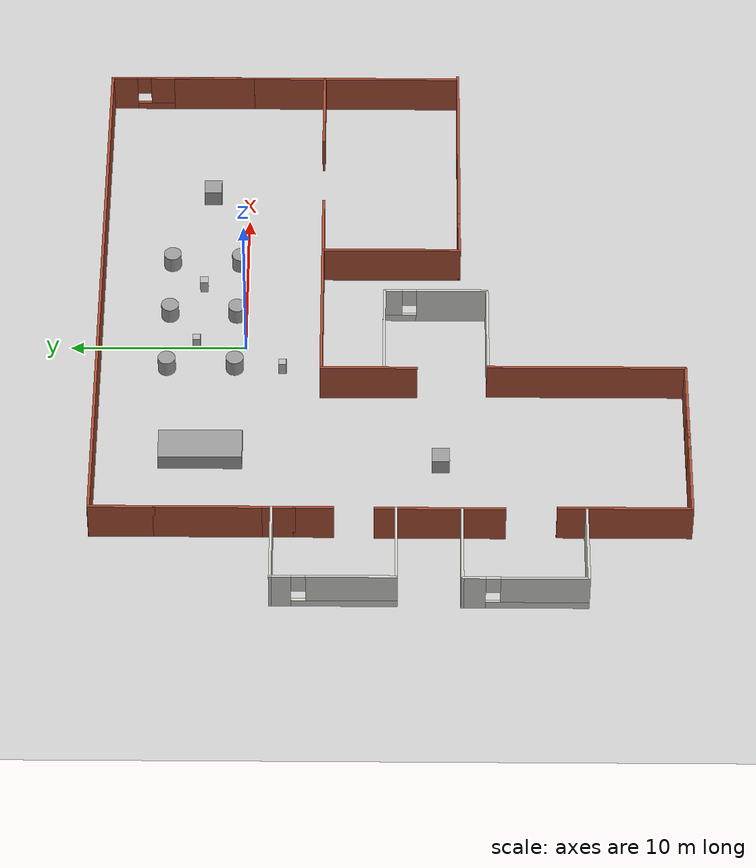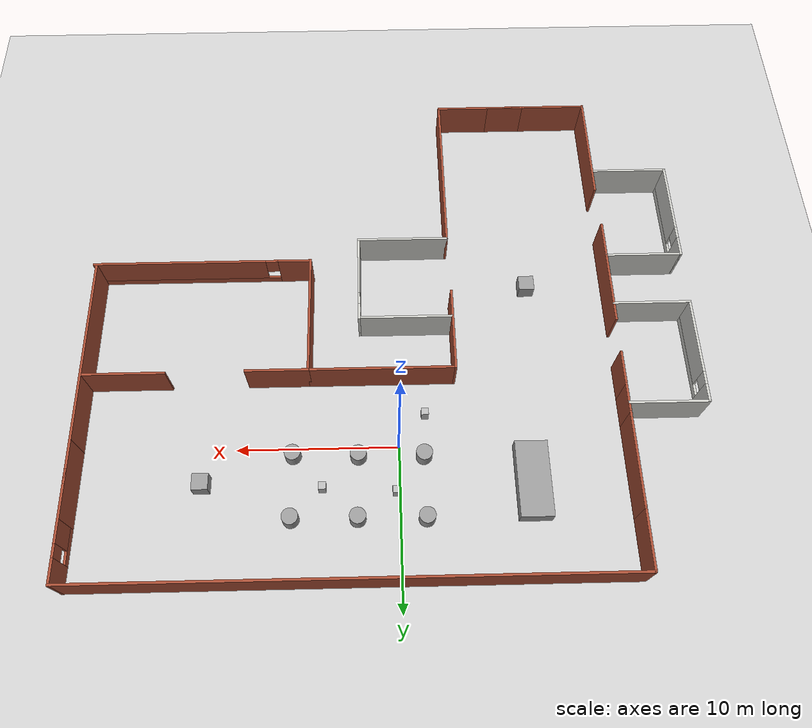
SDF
<sdf version="1.7">
 <world name="default">
  <plugin name="gazebo_ros_state" filename="libgazebo_ros_state.so"/>
  <light name="sun" type="directional">
   <pose>0 0 10 0 -0 0</pose>
   <diffuse>0.8 0.8 0.8 1</diffuse>
   <specular>0.2 0.2 0.2 1</specular>
   <attenuation>
    <range>1000</range>
    <constant>0.9</constant>
    <linear>0.01</linear>
    <quadratic>0.001</quadratic>
   </attenuation>
   <direction>-0.5 0.1 -0.9</direction>
   <spot><inner_angle>0</inner_angle><outer_angle>0</outer_angle><falloff>0</falloff></spot>
  </light>
  <model name="ground_plane">
   <static>1</static>
   <link name="link">
    <collision name="collision">
     <geometry><plane><normal>0 0 1</normal><size>100 100</size></plane></geometry>
     <surface>
      <contact><collide_bitmask>65535</collide_bitmask></contact>
      <friction><ode><mu>100</mu><mu2>50</mu2></ode></friction>
     </surface>
    </collision>
    <visual name="visual">
     <cast_shadows>0</cast_shadows>
     <geometry><plane><normal>0 0 1</normal><size>100 100</size></plane></geometry>
     <material>
      <script><uri>file://media/materials/scripts/gazebo.material</uri><name>Gazebo/Grey</name></script>
     </material>
    </visual>
   </link>
  </model>
  <gravity>0 0 -9.8</gravity>
  <magnetic_field>6e-06 2.3e-05 -4.2e-05</magnetic_field>
  <atmosphere type="adiabatic"/>
  <physics type="ode">
   <max_step_size>0.001</max_step_size>
   <real_time_factor>1</real_time_factor>
   <real_time_update_rate>1000</real_time_update_rate>
  </physics>
  <scene><ambient>0.4 0.4 0.4 1</ambient><background>0.7 0.7 0.7 1</background><shadows>1</shadows></scene>
  <audio><device>default</device></audio>
  <spherical_coordinates>
   <surface_model>EARTH_WGS84</surface_model>
   <latitude_deg>0</latitude_deg>
   <longitude_deg>0</longitude_deg>
   <elevation>0</elevation>
   <heading_deg>0</heading_deg>
  </spherical_coordinates>
  <model name="house">
   <pose>0.37485 -8.23016 0 0 -0 0</pose>
   <link name="Wall_11">
    <collision name="Wall_11_Collision">
     <geometry><box><size>5 0.15 2.5</size></box></geometry>
     <pose>0 0 1.25 0 -0 0</pose>
    </collision>
    <visual name="Wall_11_Visual">
     <pose>0 0 1.25 0 -0 0</pose>
     <geometry><box><size>5 0.15 2.5</size></box></geometry>
     <material>
      <script><uri>file://media/materials/scripts/gazebo.material</uri><name>Gazebo/CeilingTiled</name></script>
      <ambient>0.921569 0.807843 0.615686 1</ambient>
     </material>
     <meta><layer>0</layer></meta>
    </visual>
    <pose>-16.7413 6.52362 0 0 -0 3.14159</pose>
   </link>
   <link name="Wall_12">
    <pose>-19.1663 3.09862 0 0 -0 -1.5708</pose>
    <visual name="Wall_12_Visual_0">
     <pose>-2.89413 0 1.25 0 -0 0</pose>
     <geometry><box><size>1.21173 0.15 2.5</size></box></geometry>
     <material>
      <script><uri>file://media/materials/scripts/gazebo.material</uri><name>Gazebo/CeilingTiled</name></script>
      <ambient>0.921569 0.807843 0.615686 1</ambient>
     </material>
     <meta><layer>0</layer></meta>
    </visual>
    <collision name="Wall_12_Collision_0">
     <geometry><box><size>1.21173 0.15 2.5</size></box></geometry>
     <pose>-2.89413 0 1.25 0 -0 0</pose>
    </collision>
    <visual name="Wall_12_Visual_1">
     <pose>0.605867 0 0.25 0 -0 0</pose>
     <geometry><box><size>5.78827 0.15 0.5</size></box></geometry>
     <material>
      <script><uri>file://media/materials/scripts/gazebo.material</uri><name>Gazebo/CeilingTiled</name></script>
      <ambient>0.921569 0.807843 0.615686 1</ambient>
     </material>
     <meta><layer>0</layer></meta>
    </visual>
    <collision name="Wall_12_Collision_1">
     <geometry><box><size>5.78827 0.15 0.5</size></box></geometry>
     <pose>0.605867 0 0.25 0 -0 0</pose>
    </collision>
    <visual name="Wall_12_Visual_2">
     <pose>1.00587 0 1.5 0 -0 0</pose>
     <geometry><box><size>4.98827 0.15 2</size></box></geometry>
     <material>
      <script><uri>file://media/materials/scripts/gazebo.material</uri><name>Gazebo/CeilingTiled</name></script>
      <ambient>0.921569 0.807843 0.615686 1</ambient>
     </material>
     <meta><layer>0</layer></meta>
    </visual>
    <collision name="Wall_12_Collision_2">
     <geometry><box><size>4.98827 0.15 2</size></box></geometry>
     <pose>1.00587 0 1.5 0 -0 0</pose>
    </collision>
    <visual name="Wall_12_Visual_3">
     <pose>-1.88827 0 1.9 0 -0 0</pose>
     <geometry><box><size>0.8 0.15 1.2</size></box></geometry>
     <material>
      <script><uri>file://media/materials/scripts/gazebo.material</uri><name>Gazebo/CeilingTiled</name></script>
      <ambient>0.921569 0.807843 0.615686 1</ambient>
     </material>
     <meta><layer>0</layer></meta>
    </visual>
    <collision name="Wall_12_Collision_3">
     <geometry><box><size>0.8 0.15 1.2</size></box></geometry>
     <pose>-1.88827 0 1.9 0 -0 0</pose>
    </collision>
   </link>
   <link name="Wall_13">
    <collision name="Wall_13_Collision">
     <geometry><box><size>5 0.15 2.5</size></box></geometry>
     <pose>0 0 1.25 0 -0 0</pose>
    </collision>
    <visual name="Wall_13_Visual">
     <pose>0 0 1.25 0 -0 0</pose>
     <geometry><box><size>5 0.15 2.5</size></box></geometry>
     <material>
      <script><uri>file://media/materials/scripts/gazebo.material</uri><name>Gazebo/CeilingTiled</name></script>
      <ambient>0.921569 0.807843 0.615686 1</ambient>
     </material>
     <meta><layer>0</layer></meta>
    </visual>
    <pose>-16.7413 -0.326379 0 0 -0 0</pose>
   </link>
   <link name="Wall_15">
    <collision name="Wall_15_Collision">
     <geometry><box><size>2.25 0.15 2.5</size></box></geometry>
     <pose>0 0 1.25 0 -0 0</pose>
    </collision>
    <visual name="Wall_15_Visual">
     <pose>0 0 1.25 0 -0 0</pose>
     <geometry><box><size>2.25 0.15 2.5</size></box></geometry>
     <material>
      <script><uri>file://media/materials/scripts/gazebo.material</uri><name>Gazebo/Bricks</name></script>
      <ambient>1 1 1 1</ambient>
     </material>
     <meta><layer>0</layer></meta>
    </visual>
    <pose>-14.2878 4.2199 0 0 -0 -1.5708</pose>
   </link>
   <link name="Wall_17">
    <collision name="Wall_17_Collision">
     <geometry><box><size>7.25 0.15 2.5</size></box></geometry>
     <pose>0 0 1.25 0 -0 0</pose>
    </collision>
    <visual name="Wall_17_Visual">
     <pose>0 0 1.25 0 -0 0</pose>
     <geometry><box><size>7.25 0.15 2.5</size></box></geometry>
     <material>
      <script><uri>file://media/materials/scripts/gazebo.material</uri><name>Gazebo/Bricks</name></script>
      <ambient>1 1 1 1</ambient>
     </material>
     <meta><layer>0</layer></meta>
    </visual>
    <pose>-14.3152 -2.72703 0 0 -0 -1.5708</pose>
   </link>
   <link name="Wall_19">
    <collision name="Wall_19_Collision">
     <geometry><box><size>5 0.15 2.5</size></box></geometry>
     <pose>0 0 1.25 0 -0 0</pose>
    </collision>
    <visual name="Wall_19_Visual">
     <pose>0 0 1.25 0 -0 0</pose>
     <geometry><box><size>5 0.15 2.5</size></box></geometry>
     <material>
      <script><uri>file://media/materials/scripts/gazebo.material</uri><name>Gazebo/CeilingTiled</name></script>
      <ambient>0.921569 0.807843 0.615686 1</ambient>
     </material>
     <meta><layer>0</layer></meta>
    </visual>
    <pose>-16.7931 -3.92962 0 0 -0 3.14159</pose>
   </link>
   <link name="Wall_21">
    <pose>-19.2181 -7.35462 0 0 -0 -1.5708</pose>
    <visual name="Wall_21_Visual_0">
     <pose>-2.82936 0 1.25 0 -0 0</pose>
     <geometry><box><size>1.34129 0.15 2.5</size></box></geometry>
     <material>
      <script><uri>file://media/materials/scripts/gazebo.material</uri><name>Gazebo/CeilingTiled</name></script>
      <ambient>0.921569 0.807843 0.615686 1</ambient>
     </material>
     <meta><layer>0</layer></meta>
    </visual>
    <collision name="Wall_21_Collision_0">
     <geometry><box><size>1.34129 0.15 2.5</size></box></geometry>
     <pose>-2.82936 0 1.25 0 -0 0</pose>
    </collision>
    <visual name="Wall_21_Visual_1">
     <pose>0.670644 0 0.25 0 -0 0</pose>
     <geometry><box><size>5.65871 0.15 0.5</size></box></geometry>
     <material>
      <script><uri>file://media/materials/scripts/gazebo.material</uri><name>Gazebo/CeilingTiled</name></script>
      <ambient>0.921569 0.807843 0.615686 1</ambient>
     </material>
     <meta><layer>0</layer></meta>
    </visual>
    <collision name="Wall_21_Collision_1">
     <geometry><box><size>5.65871 0.15 0.5</size></box></geometry>
     <pose>0.670644 0 0.25 0 -0 0</pose>
    </collision>
    <visual name="Wall_21_Visual_2">
     <pose>1.07064 0 1.5 0 -0 0</pose>
     <geometry><box><size>4.85871 0.15 2</size></box></geometry>
     <material>
      <script><uri>file://media/materials/scripts/gazebo.material</uri><name>Gazebo/CeilingTiled</name></script>
      <ambient>0.921569 0.807843 0.615686 1</ambient>
     </material>
     <meta><layer>0</layer></meta>
    </visual>
    <collision name="Wall_21_Collision_2">
     <geometry><box><size>4.85871 0.15 2</size></box></geometry>
     <pose>1.07064 0 1.5 0 -0 0</pose>
    </collision>
    <visual name="Wall_21_Visual_3">
     <pose>-1.75871 0 1.9 0 -0 0</pose>
     <geometry><box><size>0.8 0.15 1.2</size></box></geometry>
     <material>
      <script><uri>file://media/materials/scripts/gazebo.material</uri><name>Gazebo/CeilingTiled</name></script>
      <ambient>0.921569 0.807843 0.615686 1</ambient>
     </material>
     <meta><layer>0</layer></meta>
    </visual>
    <collision name="Wall_21_Collision_3">
     <geometry><box><size>0.8 0.15 1.2</size></box></geometry>
     <pose>-1.75871 0 1.9 0 -0 0</pose>
    </collision>
   </link>
   <link name="Wall_22">
    <collision name="Wall_22_Collision">
     <geometry><box><size>5 0.15 2.5</size></box></geometry>
     <pose>0 0 1.25 0 -0 0</pose>
    </collision>
    <visual name="Wall_22_Visual">
     <pose>0 0 1.25 0 -0 0</pose>
     <geometry><box><size>5 0.15 2.5</size></box></geometry>
     <material>
      <script><uri>file://media/materials/scripts/gazebo.material</uri><name>Gazebo/CeilingTiled</name></script>
      <ambient>0.921569 0.807843 0.615686 1</ambient>
     </material>
     <meta><layer>0</layer></meta>
    </visual>
    <pose>-16.7931 -10.7796 0 0 -0 0</pose>
   </link>
   <link name="Wall_24">
    <collision name="Wall_24_Collision">
     <geometry><box><size>7.5 0.15 2.5</size></box></geometry>
     <pose>0 0 1.25 0 -0 0</pose>
    </collision>
    <visual name="Wall_24_Visual">
     <pose>0 0 1.25 0 -0 0</pose>
     <geometry><box><size>7.5 0.15 2.5</size></box></geometry>
     <material>
      <script><uri>file://media/materials/scripts/gazebo.material</uri><name>Gazebo/Bricks</name></script>
      <ambient>1 1 1 1</ambient>
     </material>
     <meta><layer>0</layer></meta>
    </visual>
    <pose>-14.2382 -12.8949 0 0 -0 -1.5708</pose>
   </link>
   <link name="Wall_25">
    <pose>-9.06316 -16.5699 0 0 -0 0</pose>
    <visual name="Wall_25_Visual_0">
     <pose>-2.80375 0 1.25 0 -0 0</pose>
     <geometry><box><size>4.89251 0.15 2.5</size></box></geometry>
     <material>
      <script><uri>file://media/materials/scripts/gazebo.material</uri><name>Gazebo/Bricks</name></script>
      <ambient>1 1 1 1</ambient>
     </material>
     <meta><layer>0</layer></meta>
    </visual>
    <collision name="Wall_25_Collision_0">
     <geometry><box><size>4.89251 0.15 2.5</size></box></geometry>
     <pose>-2.80375 0 1.25 0 -0 0</pose>
    </collision>
    <visual name="Wall_25_Visual_1">
     <pose>2.89625 0 1.25 0 -0 0</pose>
     <geometry><box><size>4.70749 0.15 2.5</size></box></geometry>
     <material>
      <script><uri>file://media/materials/scripts/gazebo.material</uri><name>Gazebo/Bricks</name></script>
      <ambient>1 1 1 1</ambient>
     </material>
     <meta><layer>0</layer></meta>
    </visual>
    <collision name="Wall_25_Collision_1">
     <geometry><box><size>4.70749 0.15 2.5</size></box></geometry>
     <pose>2.89625 0 1.25 0 -0 0</pose>
    </collision>
    <visual name="Wall_25_Visual_2">
     <pose>0.092508 0 2.25 0 -0 0</pose>
     <geometry><box><size>0.9 0.15 0.5</size></box></geometry>
     <material>
      <script><uri>file://media/materials/scripts/gazebo.material</uri><name>Gazebo/Bricks</name></script>
      <ambient>1 1 1 1</ambient>
     </material>
     <meta><layer>0</layer></meta>
    </visual>
    <collision name="Wall_25_Collision_2">
     <geometry><box><size>0.9 0.15 0.5</size></box></geometry>
     <pose>0.092508 0 2.25 0 -0 0</pose>
    </collision>
   </link>
   <link name="Wall_26">
    <collision name="Wall_26_Collision">
     <geometry><box><size>11.25 0.15 2.5</size></box></geometry>
     <pose>0 0 1.25 0 -0 0</pose>
    </collision>
    <visual name="Wall_26_Visual">
     <pose>0 0 1.25 0 -0 0</pose>
     <geometry><box><size>11.25 0.15 2.5</size></box></geometry>
     <material>
      <script><uri>file://media/materials/scripts/gazebo.material</uri><name>Gazebo/Bricks</name></script>
      <ambient>1 1 1 1</ambient>
     </material>
     <meta><layer>0</layer></meta>
    </visual>
    <pose>-3.88816 -11.0199 0 0 -0 1.5708</pose>
   </link>
   <link name="Wall_27">
    <collision name="Wall_27_Collision">
     <geometry><box><size>6 0.15 2.5</size></box></geometry>
     <pose>0 0 1.25 0 -0 0</pose>
    </collision>
    <visual name="Wall_27_Visual">
     <pose>0 0 1.25 0 -0 0</pose>
     <geometry><box><size>6 0.15 2.5</size></box></geometry>
     <material>
      <script><uri>file://media/materials/scripts/gazebo.material</uri><name>Gazebo/CeilingTiled</name></script>
      <ambient>0.921569 0.807843 0.615686 1</ambient>
     </material>
     <meta><layer>0</layer></meta>
    </visual>
    <pose>-0.963163 -5.4699 0 0 -0 0</pose>
   </link>
   <link name="Wall_28">
    <pose>1.96184 -2.5449 0 0 -0 1.5708</pose>
    <visual name="Wall_28_Visual_0">
     <pose>-0.948972 0 1.25 0 -0 0</pose>
     <geometry><box><size>4.10206 0.15 2.5</size></box></geometry>
     <material>
      <script><uri>file://media/materials/scripts/gazebo.material</uri><name>Gazebo/CeilingTiled</name></script>
      <ambient>0.921569 0.807843 0.615686 1</ambient>
     </material>
     <meta><layer>0</layer></meta>
    </visual>
    <collision name="Wall_28_Collision_0">
     <geometry><box><size>4.10206 0.15 2.5</size></box></geometry>
     <pose>-0.948972 0 1.25 0 -0 0</pose>
    </collision>
    <visual name="Wall_28_Visual_1">
     <pose>2.05103 0 0.25 0 -0 0</pose>
     <geometry><box><size>1.89794 0.15 0.5</size></box></geometry>
     <material>
      <script><uri>file://media/materials/scripts/gazebo.material</uri><name>Gazebo/CeilingTiled</name></script>
      <ambient>0.921569 0.807843 0.615686 1</ambient>
     </material>
     <meta><layer>0</layer></meta>
    </visual>
    <collision name="Wall_28_Collision_1">
     <geometry><box><size>1.89794 0.15 0.5</size></box></geometry>
     <pose>2.05103 0 0.25 0 -0 0</pose>
    </collision>
    <visual name="Wall_28_Visual_2">
     <pose>2.45103 0 1.5 0 -0 0</pose>
     <geometry><box><size>1.09794 0.15 2</size></box></geometry>
     <material>
      <script><uri>file://media/materials/scripts/gazebo.material</uri><name>Gazebo/CeilingTiled</name></script>
      <ambient>0.921569 0.807843 0.615686 1</ambient>
     </material>
     <meta><layer>0</layer></meta>
    </visual>
    <collision name="Wall_28_Collision_2">
     <geometry><box><size>1.09794 0.15 2</size></box></geometry>
     <pose>2.45103 0 1.5 0 -0 0</pose>
    </collision>
    <visual name="Wall_28_Visual_3">
     <pose>1.50206 0 1.9 0 -0 0</pose>
     <geometry><box><size>0.8 0.15 1.2</size></box></geometry>
     <material>
      <script><uri>file://media/materials/scripts/gazebo.material</uri><name>Gazebo/CeilingTiled</name></script>
      <ambient>0.921569 0.807843 0.615686 1</ambient>
     </material>
     <meta><layer>0</layer></meta>
    </visual>
    <collision name="Wall_28_Collision_3">
     <geometry><box><size>0.8 0.15 1.2</size></box></geometry>
     <pose>1.50206 0 1.9 0 -0 0</pose>
    </collision>
   </link>
   <link name="Wall_29">
    <collision name="Wall_29_Collision">
     <geometry><box><size>6 0.15 2.5</size></box></geometry>
     <pose>0 0 1.25 0 -0 0</pose>
    </collision>
    <visual name="Wall_29_Visual">
     <pose>0 0 1.25 0 -0 0</pose>
     <geometry><box><size>6 0.15 2.5</size></box></geometry>
     <material>
      <script><uri>file://media/materials/scripts/gazebo.material</uri><name>Gazebo/CeilingTiled</name></script>
      <ambient>0.921569 0.807843 0.615686 1</ambient>
     </material>
     <meta><layer>0</layer></meta>
    </visual>
    <pose>-0.963163 0.380099 0 0 -0 3.14159</pose>
   </link>
   <link name="Wall_31">
    <collision name="Wall_31_Collision">
     <geometry><box><size>5.5 0.15 2.5</size></box></geometry>
     <pose>0 0 1.25 0 -0 0</pose>
    </collision>
    <visual name="Wall_31_Visual">
     <pose>0 0 1.25 0 -0 0</pose>
     <geometry><box><size>5.5 0.15 2.5</size></box></geometry>
     <material>
      <script><uri>file://media/materials/scripts/gazebo.material</uri><name>Gazebo/Bricks</name></script>
      <ambient>1 1 1 1</ambient>
     </material>
     <meta><layer>0</layer></meta>
    </visual>
    <pose>-3.98189 1.25425 0 0 -0 1.5708</pose>
   </link>
   <link name="Wall_45">
    <collision name="Wall_45_Collision">
     <geometry><box><size>3.75 0.15 2.5</size></box></geometry>
     <pose>0 0 1.25 0 -0 0</pose>
    </collision>
    <visual name="Wall_45_Visual">
     <pose>0 0 1.25 0 -0 0</pose>
     <geometry><box><size>3.75 0.15 2.5</size></box></geometry>
     <material>
      <script><uri>file://media/materials/scripts/gazebo.material</uri><name>Gazebo/Bricks</name></script>
      <ambient>1 1 1 1</ambient>
     </material>
     <meta><layer>0</layer></meta>
    </visual>
    <pose>-14.2878 14.7699 0 0 -0 1.5708</pose>
   </link>
   <link name="Wall_54">
    <collision name="Wall_54_Collision">
     <geometry><box><size>33.5 0.15 2.5</size></box></geometry>
     <pose>0 0 1.25 0 -0 0</pose>
    </collision>
    <visual name="Wall_54_Visual">
     <pose>0 0 1.25 0 -0 0</pose>
     <geometry><box><size>33.5 0.15 2.5</size></box></geometry>
     <material>
      <script><uri>file://media/materials/scripts/gazebo.material</uri><name>Gazebo/Bricks</name></script>
      <ambient>1 1 1 1</ambient>
     </material>
     <meta><layer>0</layer></meta>
    </visual>
    <pose>2.38719 16.5699 0 0 -0 0</pose>
   </link>
   <link name="Wall_55">
    <pose>19.0622 6.3949 0 0 -0 -1.5708</pose>
    <visual name="Wall_55_Visual_0">
     <pose>-9.4817 0 1.25 0 -0 0</pose>
     <geometry><box><size>1.53661 0.15 2.5</size></box></geometry>
     <material>
      <script><uri>file://media/materials/scripts/gazebo.material</uri><name>Gazebo/Bricks</name></script>
      <ambient>1 1 1 1</ambient>
     </material>
     <meta><layer>0</layer></meta>
    </visual>
    <collision name="Wall_55_Collision_0">
     <geometry><box><size>1.53661 0.15 2.5</size></box></geometry>
     <pose>-9.4817 0 1.25 0 -0 0</pose>
    </collision>
    <visual name="Wall_55_Visual_1">
     <pose>3.34307 0 1.25 0 -0 0</pose>
     <geometry><box><size>13.8139 0.15 2.5</size></box></geometry>
     <material>
      <script><uri>file://media/materials/scripts/gazebo.material</uri><name>Gazebo/Bricks</name></script>
      <ambient>1 1 1 1</ambient>
     </material>
     <meta><layer>0</layer></meta>
    </visual>
    <collision name="Wall_55_Collision_1">
     <geometry><box><size>13.8139 0.15 2.5</size></box></geometry>
     <pose>3.34307 0 1.25 0 -0 0</pose>
    </collision>
    <visual name="Wall_55_Visual_2">
     <pose>-6.58863 0 0.25 0 -0 0</pose>
     <geometry><box><size>4.24953 0.15 0.5</size></box></geometry>
     <material>
      <script><uri>file://media/materials/scripts/gazebo.material</uri><name>Gazebo/Bricks</name></script>
      <ambient>1 1 1 1</ambient>
     </material>
     <meta><layer>0</layer></meta>
    </visual>
    <collision name="Wall_55_Collision_2">
     <geometry><box><size>4.24953 0.15 0.5</size></box></geometry>
     <pose>-6.58863 0 0.25 0 -0 0</pose>
    </collision>
    <visual name="Wall_55_Visual_3">
     <pose>-6.18863 0 1.5 0 -0 0</pose>
     <geometry><box><size>3.44953 0.15 2</size></box></geometry>
     <material>
      <script><uri>file://media/materials/scripts/gazebo.material</uri><name>Gazebo/Bricks</name></script>
      <ambient>1 1 1 1</ambient>
     </material>
     <meta><layer>0</layer></meta>
    </visual>
    <collision name="Wall_55_Collision_3">
     <geometry><box><size>3.44953 0.15 2</size></box></geometry>
     <pose>-6.18863 0 1.5 0 -0 0</pose>
    </collision>
    <visual name="Wall_55_Visual_4">
     <pose>-8.31339 0 1.9 0 -0 0</pose>
     <geometry><box><size>0.8 0.15 1.2</size></box></geometry>
     <material>
      <script><uri>file://media/materials/scripts/gazebo.material</uri><name>Gazebo/Bricks</name></script>
      <ambient>1 1 1 1</ambient>
     </material>
     <meta><layer>0</layer></meta>
    </visual>
    <collision name="Wall_55_Collision_4">
     <geometry><box><size>0.8 0.15 1.2</size></box></geometry>
     <pose>-8.31339 0 1.9 0 -0 0</pose>
    </collision>
    <visual name="Wall_55_Visual_5">
     <pose>-4.01386 0 2.25 0 -0 0</pose>
     <geometry><box><size>0.9 0.15 0.5</size></box></geometry>
     <material>
      <script><uri>file://media/materials/scripts/gazebo.material</uri><name>Gazebo/Bricks</name></script>
      <ambient>1 1 1 1</ambient>
     </material>
     <meta><layer>0</layer></meta>
    </visual>
    <collision name="Wall_55_Collision_5">
     <geometry><box><size>0.9 0.15 0.5</size></box></geometry>
     <pose>-4.01386 0 2.25 0 -0 0</pose>
    </collision>
   </link>
   <link name="Wall_57">
    <collision name="Wall_57_Collision">
     <geometry><box><size>9.25 0.15 2.5</size></box></geometry>
     <pose>0 0 1.25 0 -0 0</pose>
    </collision>
    <visual name="Wall_57_Visual">
     <pose>0 0 1.25 0 -0 0</pose>
     <geometry><box><size>9.25 0.15 2.5</size></box></geometry>
     <material>
      <script><uri>file://media/materials/scripts/gazebo.material</uri><name>Gazebo/Bricks</name></script>
      <ambient>1 1 1 1</ambient>
     </material>
     <meta><layer>0</layer></meta>
    </visual>
    <pose>0.56811 3.92925 0 0 -0 0</pose>
   </link>
   <link name="Wall_60">
    <collision name="Wall_60_Collision">
     <geometry><box><size>8 0.15 2.5</size></box></geometry>
     <pose>0 0 1.25 0 -0 0</pose>
    </collision>
    <visual name="Wall_60_Visual">
     <pose>0 0 1.25 0 -0 0</pose>
     <geometry><box><size>8 0.15 2.5</size></box></geometry>
     <material>
      <script><uri>file://media/materials/scripts/gazebo.material</uri><name>Gazebo/Bricks</name></script>
      <ambient>1 1 1 1</ambient>
     </material>
     <meta><layer>0</layer></meta>
    </visual>
    <pose>5.11811 0.004247 0 0 -0 -1.5708</pose>
   </link>
   <link name="Wall_61">
    <pose>12.1681 -3.92075 0 0 -0 0</pose>
    <visual name="Wall_61_Visual_0">
     <pose>-6.02562 0 1.25 0 -0 0</pose>
     <geometry><box><size>2.19876 0.15 2.5</size></box></geometry>
     <material>
      <script><uri>file://media/materials/scripts/gazebo.material</uri><name>Gazebo/Bricks</name></script>
      <ambient>1 1 1 1</ambient>
     </material>
     <meta><layer>0</layer></meta>
    </visual>
    <collision name="Wall_61_Collision_0">
     <geometry><box><size>2.19876 0.15 2.5</size></box></geometry>
     <pose>-6.02562 0 1.25 0 -0 0</pose>
    </collision>
    <visual name="Wall_61_Visual_1">
     <pose>1.09938 0 0.25 0 -0 0</pose>
     <geometry><box><size>12.0512 0.15 0.5</size></box></geometry>
     <material>
      <script><uri>file://media/materials/scripts/gazebo.material</uri><name>Gazebo/Bricks</name></script>
      <ambient>1 1 1 1</ambient>
     </material>
     <meta><layer>0</layer></meta>
    </visual>
    <collision name="Wall_61_Collision_1">
     <geometry><box><size>12.0512 0.15 0.5</size></box></geometry>
     <pose>1.09938 0 0.25 0 -0 0</pose>
    </collision>
    <visual name="Wall_61_Visual_2">
     <pose>1.49938 0 1.5 0 -0 0</pose>
     <geometry><box><size>11.2512 0.15 2</size></box></geometry>
     <material>
      <script><uri>file://media/materials/scripts/gazebo.material</uri><name>Gazebo/Bricks</name></script>
      <ambient>1 1 1 1</ambient>
     </material>
     <meta><layer>0</layer></meta>
    </visual>
    <collision name="Wall_61_Collision_2">
     <geometry><box><size>11.2512 0.15 2</size></box></geometry>
     <pose>1.49938 0 1.5 0 -0 0</pose>
    </collision>
    <visual name="Wall_61_Visual_3">
     <pose>-4.52624 0 1.9 0 -0 0</pose>
     <geometry><box><size>0.8 0.15 1.2</size></box></geometry>
     <material>
      <script><uri>file://media/materials/scripts/gazebo.material</uri><name>Gazebo/Bricks</name></script>
      <ambient>1 1 1 1</ambient>
     </material>
     <meta><layer>0</layer></meta>
    </visual>
    <collision name="Wall_61_Collision_3">
     <geometry><box><size>0.8 0.15 1.2</size></box></geometry>
     <pose>-4.52624 0 1.9 0 -0 0</pose>
    </collision>
   </link>
   <link name="Wall_63">
    <collision name="Wall_63_Collision">
     <geometry><box><size>4 0.15 2.5</size></box></geometry>
     <pose>0 0 1.25 0 -0 0</pose>
    </collision>
    <visual name="Wall_63_Visual">
     <pose>0 0 1.25 0 -0 0</pose>
     <geometry><box><size>4 0.15 2.5</size></box></geometry>
     <material>
      <script><uri>file://media/materials/scripts/gazebo.material</uri><name>Gazebo/Bricks</name></script>
      <ambient>1 1 1 1</ambient>
     </material>
     <meta><layer>0</layer></meta>
    </visual>
    <pose>7.04311 3.92925 0 0 -0 0</pose>
   </link>
   <link name="Wall_65">
    <collision name="Wall_65_Collision">
     <geometry><box><size>5.25 0.15 2.5</size></box></geometry>
     <pose>0 0 1.25 0 -0 0</pose>
    </collision>
    <visual name="Wall_65_Visual">
     <pose>0 0 1.25 0 -0 0</pose>
     <geometry><box><size>5.25 0.15 2.5</size></box></geometry>
     <material>
      <script><uri>file://media/materials/scripts/gazebo.material</uri><name>Gazebo/Bricks</name></script>
      <ambient>1 1 1 1</ambient>
     </material>
     <meta><layer>0</layer></meta>
    </visual>
    <pose>16.4878 3.97444 0 0 -0 0</pose>
   </link>
   <link name="Wall_8">
    <collision name="Wall_8_Collision">
     <geometry><box><size>6 0.15 2.5</size></box></geometry>
     <pose>0 0 1.25 0 -0 0</pose>
    </collision>
    <visual name="Wall_8_Visual">
     <pose>0 0 1.25 0 -0 0</pose>
     <geometry><box><size>6 0.15 2.5</size></box></geometry>
     <material>
      <script><uri>file://media/materials/scripts/gazebo.material</uri><name>Gazebo/Bricks</name></script>
      <ambient>1 1 1 1</ambient>
     </material>
     <meta><layer>0</layer></meta>
    </visual>
    <pose>-14.2878 10.0449 0 0 -0 -1.5708</pose>
   </link>
   <link name="Wall_9">
    <collision name="Wall_9_Collision">
     <geometry><box><size>2 0.15 2.5</size></box></geometry>
     <pose>0 0 1.25 0 -0 0</pose>
    </collision>
    <visual name="Wall_9_Visual">
     <pose>0 0 1.25 0 -0 0</pose>
     <geometry><box><size>2 0.15 2.5</size></box></geometry>
     <material>
      <script><uri>file://media/materials/scripts/gazebo.material</uri><name>Gazebo/Bricks</name></script>
      <ambient>1 1 1 1</ambient>
     </material>
     <meta><layer>0</layer></meta>
    </visual>
    <pose>-14.2878 6.1949 0 0 -0 -1.5708</pose>
   </link>
   <static>1</static>
  </model>
  <model name="house_0">
   <pose>4.99842 -10.0878 0 0 -0 0</pose>
   <link name="Wall_71">
    <collision name="Wall_71_Collision">
     <geometry><box><size>4.75 0.15 2.5</size></box></geometry>
     <pose>0 0 1.25 0 -0 0</pose>
    </collision>
    <visual name="Wall_71_Visual">
     <pose>0 0 1.25 0 -0 0</pose>
     <geometry><box><size>4.75 0.15 2.5</size></box></geometry>
     <material>
      <script><uri>file://media/materials/scripts/gazebo.material</uri><name>Gazebo/Bricks</name></script>
      <ambient>1 1 1 1</ambient>
     </material>
     <meta><layer>0</layer></meta>
    </visual>
    <pose>14.4369 12.4091 0 0 -0 -1.5708</pose>
   </link>
   <link name="Wall_74">
    <collision name="Wall_74_Collision">
     <geometry><box><size>2.5 0.15 2.5</size></box></geometry>
     <pose>0 0 1.25 0 -0 0</pose>
    </collision>
    <visual name="Wall_74_Visual">
     <pose>0 0 1.25 0 -0 0</pose>
     <geometry><box><size>2.5 0.15 2.5</size></box></geometry>
     <material>
      <script><uri>file://media/materials/scripts/gazebo.material</uri><name>Gazebo/Bricks</name></script>
      <ambient>1 1 1 1</ambient>
     </material>
     <meta><layer>0</layer></meta>
    </visual>
    <pose>-13.2619 -14.7091 0 0 -0 0</pose>
   </link>
   <static>1</static>
  </model>
  <model name="unit_box_clone_0">
   <pose>11.9327 2.19686 0.5 0 -0 0</pose>
   <link name="link">
    <inertial>
     <mass>1</mass>
     <inertia>
      <ixx>0.166667</ixx>
      <ixy>0</ixy>
      <ixz>0</ixz>
      <iyy>0.166667</iyy>
      <iyz>0</iyz>
      <izz>0.166667</izz>
     </inertia>
    </inertial>
    <collision name="collision"><geometry><box><size>0.999997 1 1</size></box></geometry></collision>
    <visual name="visual">
     <geometry><box><size>0.999997 1 1</size></box></geometry>
     <material>
      <script><name>Gazebo/Grey</name><uri>file://media/materials/scripts/gazebo.material</uri></script>
     </material>
    </visual>
   </link>
  </model>
  <model name="unit_cylinder">
   <pose>6.52313 4.40664 0.5 0 -0 0</pose>
   <link name="link">
    <inertial>
     <mass>1</mass>
     <inertia><ixx>0.145833</ixx><ixy>0</ixy><ixz>0</ixz><iyy>0.145833</iyy><iyz>0</iyz><izz>0.125</izz></inertia>
    </inertial>
    <collision name="collision">
     <geometry><cylinder><radius>0.5</radius><length>1</length></cylinder></geometry>
    </collision>
    <visual name="visual">
     <geometry><cylinder><radius>0.5</radius><length>1</length></cylinder></geometry>
     <material>
      <script><name>Gazebo/Grey</name><uri>file://media/materials/scripts/gazebo.material</uri></script>
     </material>
    </visual>
   </link>
  </model>
  <model name="unit_cylinder_clone_0">
   <pose>2.53887 4.43589 0.484514 0 -0 0</pose>
   <link name="link">
    <inertial>
     <mass>1</mass>
     <inertia><ixx>0.145833</ixx><ixy>0</ixy><ixz>0</ixz><iyy>0.145833</iyy><iyz>0</iyz><izz>0.125</izz></inertia>
    </inertial>
    <collision name="collision">
     <geometry><cylinder><radius>0.5</radius><length>1</length></cylinder></geometry>
    </collision>
    <visual name="visual">
     <geometry><cylinder><radius>0.5</radius><length>1</length></cylinder></geometry>
     <material>
      <script><name>Gazebo/Grey</name><uri>file://media/materials/scripts/gazebo.material</uri></script>
     </material>
    </visual>
   </link>
  </model>
  <model name="unit_cylinder_clone_1">
   <pose>6.47863 0.465531 0.5 0 -0 0</pose>
   <link name="link">
    <inertial>
     <mass>1</mass>
     <inertia><ixx>0.145833</ixx><ixy>0</ixy><ixz>0</ixz><iyy>0.145833</iyy><iyz>0</iyz><izz>0.125</izz></inertia>
    </inertial>
    <collision name="collision">
     <geometry><cylinder><radius>0.5</radius><length>1</length></cylinder></geometry>
    </collision>
    <visual name="visual">
     <geometry><cylinder><radius>0.5</radius><length>1</length></cylinder></geometry>
     <material>
      <script><name>Gazebo/Grey</name><uri>file://media/materials/scripts/gazebo.material</uri></script>
     </material>
    </visual>
   </link>
  </model>
  <model name="unit_cylinder_clone_3">
   <pose>2.48459 0.587947 0.5 0 -0 0</pose>
   <link name="link">
    <inertial>
     <mass>1</mass>
     <inertia><ixx>0.145833</ixx><ixy>0</ixy><ixz>0</ixz><iyy>0.145833</iyy><iyz>0</iyz><izz>0.125</izz></inertia>
    </inertial>
    <collision name="collision">
     <geometry><cylinder><radius>0.5</radius><length>1</length></cylinder></geometry>
    </collision>
    <visual name="visual">
     <geometry><cylinder><radius>0.5</radius><length>1</length></cylinder></geometry>
     <material>
      <script><name>Gazebo/Grey</name><uri>file://media/materials/scripts/gazebo.material</uri></script>
     </material>
    </visual>
   </link>
  </model>
  <model name="unit_cylinder_clone_4">
   <pose>-1.52618 0.631928 0.5 0 -0 0</pose>
   <link name="link">
    <inertial>
     <mass>1</mass>
     <inertia><ixx>0.145833</ixx><ixy>0</ixy><ixz>0</ixz><iyy>0.145833</iyy><iyz>0</iyz><izz>0.125</izz></inertia>
    </inertial>
    <collision name="collision">
     <geometry><cylinder><radius>0.5</radius><length>1</length></cylinder></geometry>
    </collision>
    <visual name="visual">
     <geometry><cylinder><radius>0.5</radius><length>1</length></cylinder></geometry>
     <material>
      <script><name>Gazebo/Grey</name><uri>file://media/materials/scripts/gazebo.material</uri></script>
     </material>
    </visual>
   </link>
  </model>
  <model name="unit_cylinder_clone_5">
   <pose>-1.56789 4.4928 0.5 0 -0 0</pose>
   <link name="link">
    <inertial>
     <mass>1</mass>
     <inertia><ixx>0.145833</ixx><ixy>0</ixy><ixz>0</ixz><iyy>0.145833</iyy><iyz>0</iyz><izz>0.125</izz></inertia>
    </inertial>
    <collision name="collision">
     <geometry><cylinder><radius>0.5</radius><length>1</length></cylinder></geometry>
    </collision>
    <visual name="visual">
     <geometry><cylinder><radius>0.5</radius><length>1</length></cylinder></geometry>
     <material>
      <script><name>Gazebo/Grey</name><uri>file://media/materials/scripts/gazebo.material</uri></script>
     </material>
    </visual>
   </link>
  </model>
  <model name="unit_box_0">
   <pose>-8.75306 -11.0379 0.5 0 -0 0</pose>
   <link name="link">
    <inertial>
     <mass>1</mass>
     <inertia>
      <ixx>0.166667</ixx>
      <ixy>0</ixy>
      <ixz>0</ixz>
      <iyy>0.166667</iyy>
      <iyz>0</iyz>
      <izz>0.166667</izz>
     </inertia>
    </inertial>
    <collision name="collision"><geometry><box><size>0.999999 1 1</size></box></geometry></collision>
    <visual name="visual">
     <geometry><box><size>0.999999 1 1</size></box></geometry>
     <material>
      <script><name>Gazebo/Grey</name><uri>file://media/materials/scripts/gazebo.material</uri></script>
     </material>
    </visual>
   </link>
  </model>
  <model name="unit_box_clone_0_clone">
   <pose>-8.00836 2.40611 0.5 0 -0 0</pose>
   <link name="link">
    <inertial>
     <mass>1</mass>
     <inertia>
      <ixx>0.166667</ixx>
      <ixy>0</ixy>
      <ixz>0</ixz>
      <iyy>0.166667</iyy>
      <iyz>0</iyz>
      <izz>0.166667</izz>
     </inertia>
    </inertial>
    <collision name="collision"><geometry><box><size>2.00415 4.694 1</size></box></geometry></collision>
    <visual name="visual">
     <geometry><box><size>2.00415 4.694 1</size></box></geometry>
     <material>
      <script><name>Gazebo/Grey</name><uri>file://media/materials/scripts/gazebo.material</uri></script>
     </material>
    </visual>
   </link>
  </model>
  <model name="moving_box_1">
   <pose>0.2181692123413086 2.8494062423706055 0.4 0 0 0</pose>
   <static>false</static>
   <link name="link">
    <collision name="collision"><geometry><box><size>0.45 0.45 0.8</size></box></geometry></collision>
    <visual name="visual"><geometry><box><size>0.45 0.45 0.8</size></box></geometry></visual>
    <kinematic>true</kinematic>
   </link>
  </model>
  <model name="moving_box_2">
   <pose>4.66617488861084 2.5308852195739746 0.4 0 0 0</pose>
   <static>false</static>
   <link name="link">
    <collision name="collision"><geometry><box><size>0.45 0.45 0.8</size></box></geometry></collision>
    <visual name="visual"><geometry><box><size>0.45 0.45 0.8</size></box></geometry></visual>
    <kinematic>true</kinematic>
   </link>
  </model>
  <model name="moving_box_3">
   <pose>-1.6642284393310547 -2.076890707015991 0.4 0 0 0</pose>
   <static>false</static>
   <link name="link">
    <collision name="collision"><geometry><box><size>0.45 0.45 0.8</size></box></geometry></collision>
    <visual name="visual"><geometry><box><size>0.45 0.45 0.8</size></box></geometry></visual>
    <kinematic>true</kinematic>
   </link>
  </model>
 </world>
</sdf>
